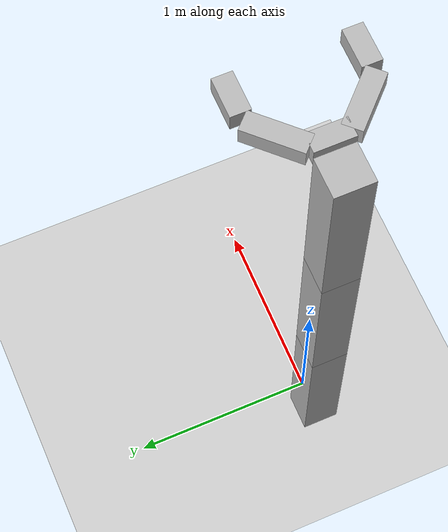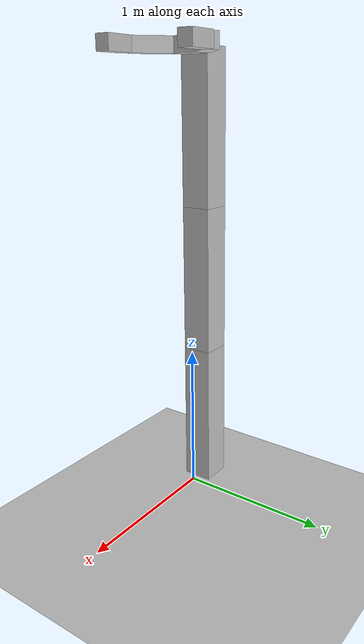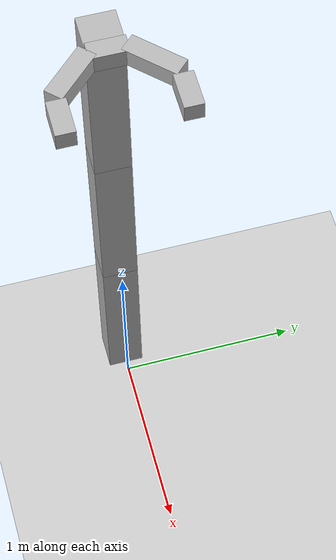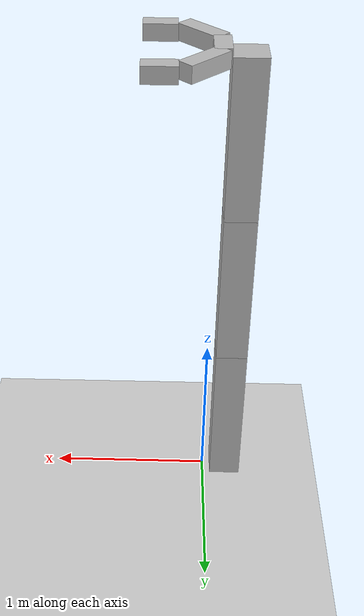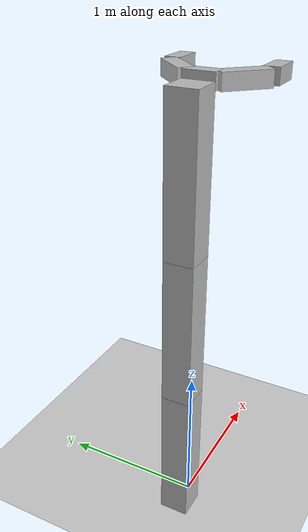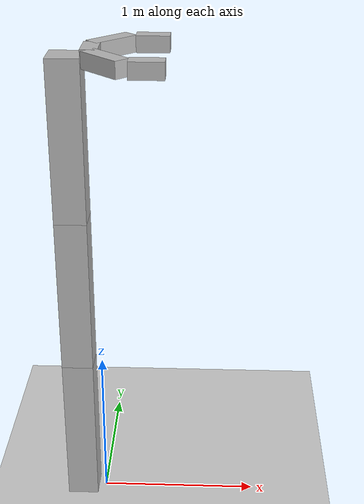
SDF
<?xml version="1.0" ?>
<sdf version="1.4">
  <world name="default">
    <include>
	<uri>model://ground_plane</uri>
    </include>

    <include>
      <uri>model://sun</uri>
    </include>

    <model name="three_link_gripper">
    <gravity>false</gravity>
        <link name="firstArm">
            <pose>-0.15 0.0 0.5 0 0 0</pose>
            <inertial>
                <pose>0 0 -0.5 0 0 0</pose>
                <inertia>
                    <ixx>0.01</ixx>
                    <ixy>0</ixy>
                    <ixz>0</ixz>
                    <iyy>0.01</iyy>
                    <iyz>0</iyz>
                    <izz>0.01</izz>
                </inertia>
                <mass>10.0</mass>
            </inertial>
            <collision name="collision">
                <geometry>
                    <box>
                        <size>0.2 0.2 1.0</size>
                    </box>
                </geometry>
            </collision>
            <visual name="visual">
                <geometry>
                    <box>
                        <size>0.2 0.2 1.0</size>
                    </box>
                </geometry>
                <material>
                    <script>Gazebo/Purple</script>
                </material>
            </visual>
        </link>
         <link name="secondArm">
            <pose>-0.15 0.0 1.5 0 0 0</pose>
            <inertial>
                <pose>0 0 1.0 0 0 0</pose>
                <inertia>
                    <ixx>0.01</ixx>
                    <ixy>0</ixy>
                    <ixz>0</ixz>
                    <iyy>0.01</iyy>
                    <iyz>0</iyz>
                    <izz>0.01</izz>
                </inertia>
                <mass>10.0</mass>
            </inertial>
            <collision name="collision">
                <geometry>
                    <box>
                        <size>0.2 0.2 1.0</size>
                    </box>
                </geometry>
            </collision>
            <visual name="visual">
                <geometry>
                    <box>
                        <size>0.2 0.2 1.0</size>
                    </box>
                </geometry>
                <material>
                    <script>Gazebo/Purple</script>
                </material>
            </visual>
        </link>
         <link name="thirdArm">
            <pose>-0.15 0.0 2.5 0 0 0</pose>
            <inertial>
                <pose>0 0 2.0 0 0 0</pose>
                <inertia>
                    <ixx>0.01</ixx>
                    <ixy>0</ixy>
                    <ixz>0</ixz>
                    <iyy>0.01</iyy>
                    <iyz>0</iyz>
                    <izz>0.01</izz>
                </inertia>
                <mass>10.0</mass>
            </inertial>
            <collision name="collision">
                <geometry>
                    <box>
                        <size>0.2 0.2 1.0</size>
                    </box>
                </geometry>
            </collision>
            <visual name="visual">
                <geometry>
                    <box>
                        <size>0.2 0.2 1.0</size>
                    </box>
                </geometry>
                <material>
                    <script>Gazebo/Purple</script>
                </material>
            </visual>
        </link>
        <link name="palm">
            <pose>0.0 0.0 3.0 0 0 0</pose>
            <inertial>
                <inertia>
                    <ixx>0.01</ixx>
                    <ixy>0</ixy>
                    <ixz>0</ixz>
                    <iyy>0.01</iyy>
                    <iyz>0</iyz>
                    <izz>0.01</izz>
                </inertia>
                <mass>0.5</mass>
            </inertial>
            <collision name="collision">
                <geometry>
                    <box>
                        <size>0.1 0.2 0.1</size>
                    </box>
                </geometry>
            </collision>
            <visual name="visual">
                <geometry>
                    <box>
                        <size>0.1 0.2 0.1</size>
                    </box>
                </geometry>
                <material>
                    <script>Gazebo/Red</script>
                </material>
            </visual>
        </link>
        <link name="left_finger">
            <pose>0.1 0.2 3.0 0 0 -0.78539</pose>
            <inertial>
                <inertia>
                    <ixx>0.01</ixx>
                    <ixy>0</ixy>
                    <ixz>0</ixz>
                    <iyy>0.01</iyy>
                    <iyz>0</iyz>
                    <izz>0.01</izz>
                </inertia>
                <mass>0.1</mass>
            </inertial>
            <collision name="collision">
                <geometry>
                    <box>
                        <size>0.1 0.3 0.1</size>
                    </box>
                </geometry>
            </collision>
            <visual name="visual">
                <geometry>
                    <box>
                        <size>0.1 0.3 0.1</size>
                    </box>
                </geometry>
                <material>
                    <script>Gazebo/Blue</script>
                </material>
            </visual>
        </link>
        <link name="left_finger_tip">
            <pose>0.336 0.3 3.0 0 0 1.5707</pose>
            <inertial>
                <inertia>
                    <ixx>0.01</ixx>
                    <ixy>0</ixy>
                    <ixz>0</ixz>
                    <iyy>0.01</iyy>
                    <iyz>0</iyz>
                    <izz>0.01</izz>
                </inertia>
                <mass>0.1</mass>
            </inertial>
            <collision name="collision">
                <geometry>
                    <box>
                        <size>0.1 0.2 0.1</size>
                    </box>
                </geometry>
            </collision>
            <visual name="visual">
                <geometry>
                    <box>
                        <size>0.1 0.2 0.1</size>
                    </box>
                </geometry>
                <material>
                    <script>Gazebo/Blue</script>
                </material>
            </visual>
        </link>
        <link name="right_finger">
            <pose>0.1 -0.2 3.0 0 0 .78539</pose>
            <inertial>
                <inertia>
                    <ixx>0.01</ixx>
                    <ixy>0</ixy>
                    <ixz>0</ixz>
                    <iyy>0.01</iyy>
                    <iyz>0</iyz>
                    <izz>0.01</izz>
                </inertia>
                <mass>0.1</mass>
            </inertial>
            <collision name="collision">
                <geometry>
                    <box>
                        <size>0.1 0.3 0.1</size>
                    </box>
                </geometry>
            </collision>
            <visual name="visual">
                <geometry>
                    <box>
                        <size>0.1 0.3 0.1</size>
                    </box>
                </geometry>
                <material>
                    <script>Gazebo/Green</script>
                </material>
            </visual>
        </link>
        <link name="right_finger_tip">
            <pose>0.336 -0.3 3.0 0 0 1.5707</pose>
            <inertial>
                <inertia>
                    <ixx>0.01</ixx>
                    <ixy>0</ixy>
                    <ixz>0</ixz>
                    <iyy>0.01</iyy>
                    <iyz>0</iyz>
                    <izz>0.01</izz>
                </inertia>
                <mass>0.1</mass>
            </inertial>
            <collision name="collision">
                <geometry>
                    <box>
                        <size>0.1 0.2 0.1</size>
                    </box>
                </geometry>
            </collision>
            <visual name="visual">
                <geometry>
                    <box>
                        <size>0.1 0.2 0.1</size>
                    </box>
                </geometry>
                <material>
                    <script>Gazebo/Green</script>
                </material>
            </visual>
        </link>
        <static>false</static>

        <joint name="firstArmToSecondArm" type="revolute">
             <pose>-0.15 0.0 1.5 0 0 0</pose>
            <child>secondArm</child>
            <parent>firstArm</parent>
            <axis>
                <limit>
                    <lower>-0.4</lower>
                    <upper>0.4</upper>
                </limit>
                <xyz>0 0 1</xyz>
            </axis>
        </joint>

          <joint name="secondArmToThirdArm" type="revolute">
            <pose>-0.15 0.0 2.5 0 0 0</pose>
            <child>thirdArm</child>
            <parent>secondArm</parent>
            <axis>
                <limit>
                    <lower>-0.4</lower>
                    <upper>0.4</upper>
                </limit>
                <xyz>0 0 1</xyz>
            </axis>
        </joint>

         <joint name="palm_left_finger" type="revolute">
            <pose>0 -0.15 3.0 0 0 0</pose>
            <child>left_finger</child>
            <parent>palm</parent>
            <axis>
                <limit>
                    <lower>-0.4</lower>
                    <upper>0.4</upper>
                </limit>
                <xyz>0 0 1</xyz>
            </axis>
        </joint>
        <joint name="left_finger_tip" type="revolute">
            <pose>0 0.1 3.0 0 0 0</pose>
            <child>left_finger_tip</child>
            <parent>left_finger</parent>
            <axis>
                <limit>
                    <lower>-0.4</lower>
                    <upper>0.4</upper>
                </limit>
                <xyz>0 0 1</xyz>
            </axis>
        </joint>
        <joint name="palm_right_finger" type="revolute">
            <pose>0 0.15 3.0 0 0 0</pose>
            <child>right_finger</child>
            <parent>palm</parent>
            <axis>
                <limit>
                    <lower>-0.4</lower>
                    <upper>0.4</upper>
                </limit>
                <xyz>0 0 1</xyz>
            </axis>
        </joint>
        <joint name="right_finger_tip" type="revolute">
            <pose>0 0.1 3.0 0 0 0</pose>
            <child>right_finger_tip</child>
            <parent>right_finger</parent>
            <axis>
                <limit>
                    <lower>-0.4</lower>
                    <upper>0.4</upper>
                </limit>
                <xyz>0 0 1</xyz>
            </axis>
        </joint>
        <joint name="attachToArm" type="prismatic">
            <child>palm</child>
            <parent>thirdArm</parent>
            <axis>
                <limit>
                    <lower>0</lower>
                    <upper>0.9</upper>
                </limit>
                <xyz>0 0 1</xyz>
            </axis>
        </joint>
    <!-- reference to your plugin -->
    <plugin name="gazebo_arm" filename="libgazebo_arm.so"/>

	</model>

  </world>
</sdf>
